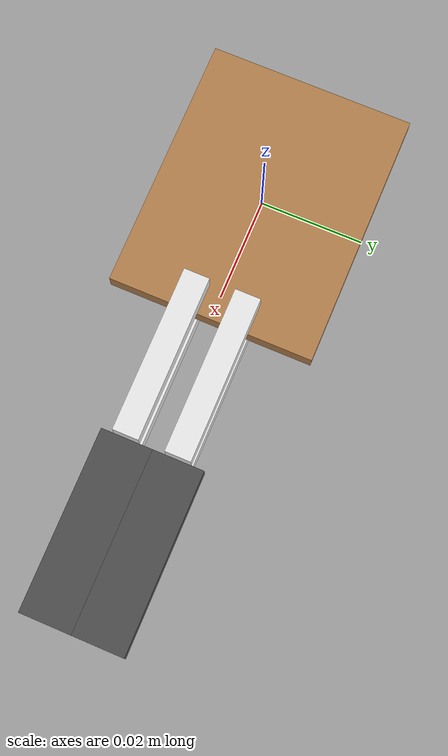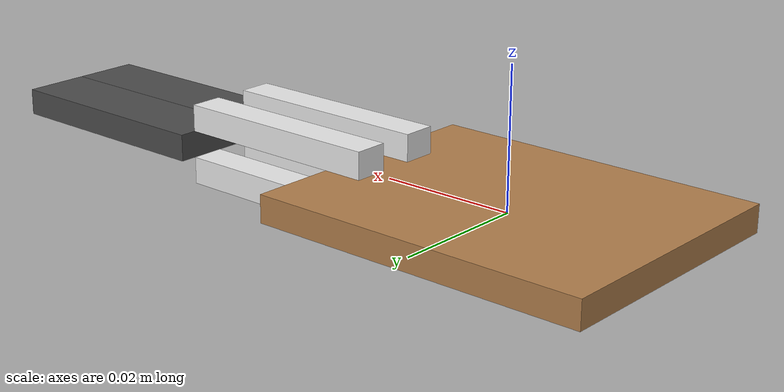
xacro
<?xml version="1.0"?>
<robot xmlns:xacro="http://ros.org/wiki/xacro">

  <!-- Base Link (Main Body) -->
  <link name="gripper_base">
    <visual>
      <origin xyz="0 0 0" rpy="0 0 0"/>
      <geometry>
        <box size="0.05 0.04 0.004"/>
      </geometry>
      <material name="plywood_colour"/>
    </visual>
    <collision>
      <origin xyz="0 0 0" rpy="0 0 0"/>
      <geometry>
        <box size="0.05 0.04 0.004"/>
      </geometry>
    </collision>
    <inertial>
      <mass value="0.010"/>
      <origin xyz="0 0 0" rpy="0 0 0"/>
      <inertia ixx="0.000005" ixy="0.0" ixz="0.0"
               iyy="0.000006" iyz="0.0"
               izz="0.000008"/>
    </inertial>
  </link>

  <!-- Left Upper Link (Linkage Arm) -->
  <link name="left_upper_link">
    <visual>
      <origin xyz="0.016 0 0" rpy="0 0 0"/>
      <geometry>
        <box size="0.032 0.005 0.004"/>
      </geometry>
      <material name="white"/>
    </visual>
    <collision>
      <origin xyz="0.016 0 0" rpy="0 0 0"/>
      <geometry>
        <box size="0.032 0.005 0.004"/>
      </geometry>
    </collision>
    <inertial>
      <mass value="0.005"/>
      <origin xyz="0.016 0 0" rpy="0 0 0"/>
      <inertia ixx="0.0000005" ixy="0.0" ixz="0.0"
               iyy="0.0000005" iyz="0.0"
               izz="0.0000005"/>
    </inertial>
  </link>

  <!-- Left Lower Link (Linkage Arm) -->
  <link name="left_lower_link">
    <visual>
      <origin xyz="0.016 0 0" rpy="0 0 0"/>
      <geometry>
        <box size="0.032 0.005 0.004"/>
      </geometry>
      <material name="white"/>
    </visual>
    <collision>
      <origin xyz="0.016 0 0" rpy="0 0 0"/>
      <geometry>
        <box size="0.032 0.005 0.004"/>
      </geometry>
    </collision>
    <inertial>
      <mass value="0.005"/>
      <origin xyz="0.016 0 0" rpy="0 0 0"/>
      <inertia ixx="0.0000005" ixy="0.0" ixz="0.0"
               iyy="0.0000005" iyz="0.0"
               izz="0.0000005"/>
    </inertial>
  </link>

  <!-- Left Finger (Parallel Part) -->
  <link name="left_finger">
    <visual>
      <origin xyz="0.0175 0 0" rpy="0 0 0"/>
      <geometry>
        <box size="0.035 0.01 0.004"/>
      </geometry>
      <material name="black">
        <color rgba="0.3 0.3 0.3 1.0"/>
      </material>
    </visual>
    <collision>
      <origin xyz="0.0175 0 0" rpy="0 0 0"/>
      <geometry>
        <box size="0.035 0.01 0.004"/>
      </geometry>
    </collision>
    <inertial>
      <mass value="0.005"/>
      <origin xyz="0.0175 0 0" rpy="0 0 0"/>
      <inertia ixx="0.0000013" ixy="0.0" ixz="0.0"
               iyy="0.0000013" iyz="0.0"
               izz="0.0000013"/>
    </inertial>
  </link>

  <!-- Right Upper Link (Linkage Arm) -->
  <link name="right_upper_link">
    <visual>
      <origin xyz="0.016 0 0" rpy="0 0 0"/>
      <geometry>
        <box size="0.032 0.005 0.004"/>
      </geometry>
      <material name="white"/>
    </visual>
    <collision>
      <origin xyz="0.016 0 0" rpy="0 0 0"/>
      <geometry>
        <box size="0.032 0.005 0.004"/>
      </geometry>
    </collision>
    <inertial>
      <mass value="0.005"/>
      <origin xyz="0.016 0 0" rpy="0 0 0"/>
      <inertia ixx="0.0000005" ixy="0.0" ixz="0.0"
               iyy="0.0000005" iyz="0.0"
               izz="0.0000005"/>
    </inertial>
  </link>

  <!-- Right Lower Link (Linkage Arm) -->
  <link name="right_lower_link">
    <visual>
      <origin xyz="0.016 0 0" rpy="0 0 0"/>
      <geometry>
        <box size="0.032 0.005 0.004"/>
      </geometry>
      <material name="white"/>
    </visual>
    <collision>
      <origin xyz="0.016 0 0" rpy="0 0 0"/>
      <geometry>
        <box size="0.032 0.005 0.004"/>
      </geometry>
    </collision>
    <inertial>
      <mass value="0.005"/>
      <origin xyz="0.016 0 0" rpy="0 0 0"/>
      <inertia ixx="0.0000005" ixy="0.0" ixz="0.0"
               iyy="0.0000005" iyz="0.0"
               izz="0.0000005"/>
    </inertial>
  </link>

  <!-- Right Finger (Parallel Part) -->
  <link name="right_finger">
    <visual>
      <origin xyz="0.0175 0 0" rpy="0 0 0"/>
      <geometry>
        <box size="0.035 0.01 0.004"/>
      </geometry>
      <material name="black"/>
    </visual>
    <collision>
      <origin xyz="0.0175 0 0" rpy="0 0 0"/>
      <geometry>
        <box size="0.035 0.01 0.004"/>
      </geometry>
    </collision>
    <inertial>
      <mass value="0.005"/>
      <origin xyz="0.0175 0 0" rpy="0 0 0"/>
      <inertia ixx="0.0000013" ixy="0.0" ixz="0.0"
               iyy="0.0000013" iyz="0.0"
               izz="0.0000013"/>
    </inertial>
  </link>

  <!-- LEFT SIDE JOINTS -->

  <!-- Joint: Base to Left Upper Link (Actuated - servo) -->
  <joint name="gripper_left_upper_joint" type="revolute">
    <parent link="gripper_base"/>
    <child link="left_upper_link"/>
    <origin xyz="0.019 0.005 0.004" rpy="0 0 0"/>
    <axis xyz="0 0 1"/>
    <limit lower="0" upper="1.57" effort="10" velocity="2.0"/>
    <dynamics damping="0.5" friction="0.1"/>
  </joint>

  <!-- Joint: Base to Left Lower Link (Passive - mimics upper) -->
  <joint name="left_lower_joint" type="revolute">
    <parent link="gripper_base"/>
    <child link="left_lower_link"/>
    <origin xyz="0.019 0.005 -0.004" rpy="0 0 0"/>
    <axis xyz="0 0 1"/>
    <limit lower="0" upper="1.57" effort="10" velocity="2.0"/>
    <dynamics damping="0.5" friction="0.1"/>
    <mimic joint="gripper_left_upper_joint" multiplier="1" offset="0"/>
  </joint>

  <!-- Joint: Left Upper Link to Left Finger -->
  <joint name="left_finger_upper_joint" type="revolute">
    <parent link="left_upper_link"/>
    <child link="left_finger"/>
    <origin xyz="0.032 0 -0.004" rpy="0 0 0"/>
    <axis xyz="0 0 1"/>
    <limit lower="0" upper="1.57" effort="10" velocity="2.0"/>
    <dynamics damping="0.5" friction="0.1"/>
    <mimic joint="gripper_left_upper_joint" multiplier="-1" offset="0"/>
  </joint>

  <!-- Joint: Left Lower Link to Left Finger -->

  <!-- RIGHT SIDE JOINTS (Mirror of left side) -->

  <!-- Joint: Base to Right Upper Link (Mimic left upper - symmetric) -->
  <joint name="right_upper_joint" type="revolute">
    <parent link="gripper_base"/>
    <child link="right_upper_link"/>
    <origin xyz="0.019 -0.005 0.004" rpy="0 0 0"/>
    <axis xyz="0 0 1"/>
    <limit lower="0" upper="1.57" effort="10" velocity="2.0"/>
    <dynamics damping="0.5" friction="0.1"/>
    <mimic joint="gripper_left_upper_joint" multiplier="-1" offset="0"/>
  </joint>

  <!-- Joint: Base to Right Lower Link -->
  <joint name="right_lower_joint" type="revolute">
    <parent link="gripper_base"/>
    <child link="right_lower_link"/>
    <origin xyz="0.019 -0.005 -0.004" rpy="0 0 0"/>
    <axis xyz="0 0 1"/>
    <limit lower="0" upper="1.57" effort="10" velocity="2.0"/>
    <dynamics damping="0.5" friction="0.1"/>
    <mimic joint="gripper_left_upper_joint" multiplier="-1" offset="0"/>
  </joint>

  <!-- Joint: Right Upper Link to Right Finger -->
  <joint name="right_finger_upper_joint" type="revolute">
    <parent link="right_upper_link"/>
    <child link="right_finger"/>
    <origin xyz="0.032 0 -0.004" rpy="0 0 0"/>
    <axis xyz="0 0 1"/>
    <limit lower="0" upper="1.57" effort="10" velocity="2.0"/>
    <dynamics damping="0.5" friction="0.1"/>
    <mimic joint="gripper_left_upper_joint" multiplier="1" offset="0"/>
  </joint>

  <!-- Joint: Right Lower Link to Right Finger -->

</robot>
